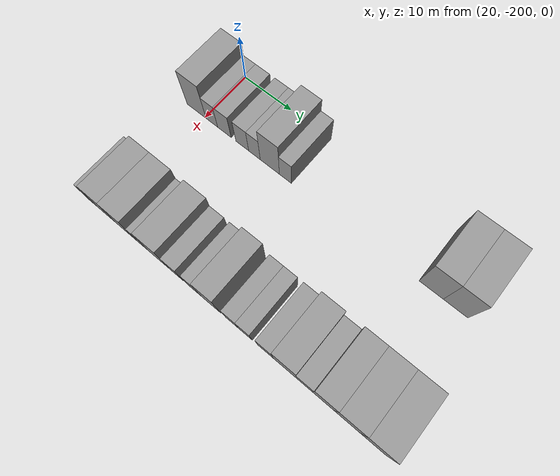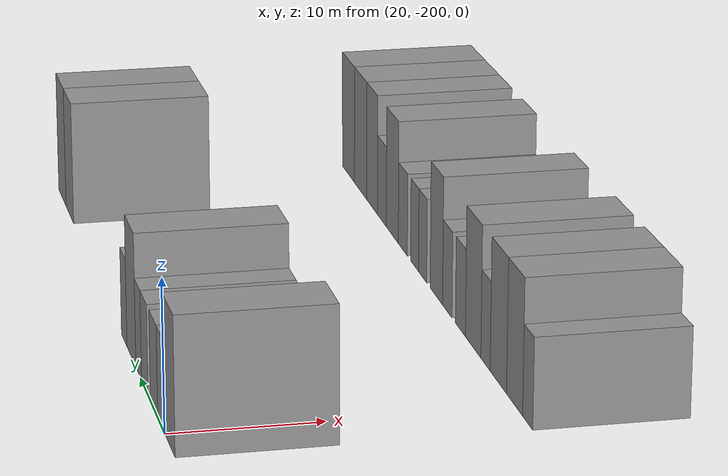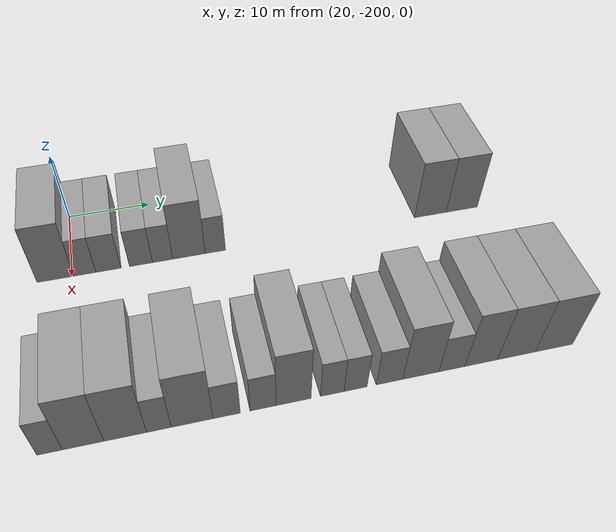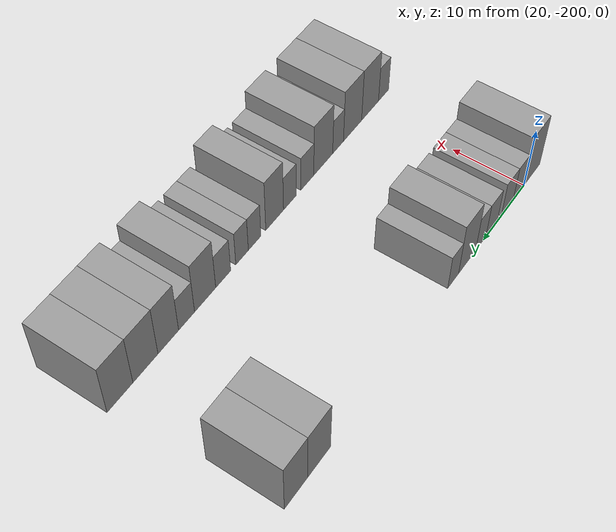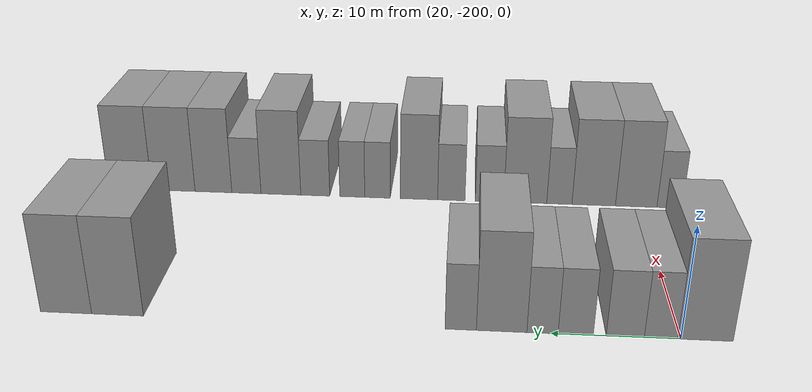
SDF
<sdf version="1.6">
 <world name="default">
  <model name="building_1">
   <static>1</static>
   <pose>25.0000 -201.8776 0 0.000000 0.000000 0.000000</pose>
   <link name="link">
    <pose>0 0 4.50 0 0 0</pose>
    <collision name="collision"><geometry><box><size>10.0000 4.2448 9.0000</size></box></geometry></collision>
    <visual name="visual">
     <cast_shadows>0</cast_shadows>
     <geometry><box><size>10.0000 4.2448 9.0000</size></box></geometry>
     <material>
      <script>
       <uri>model://grey_wall/materials/scripts</uri>
       <uri>model://grey_wall/materials/textures</uri>
       <name>vrc/grey_wall</name>
      </script>
     </material>
    </visual>
   </link>
  </model>
  <model name="building_2">
   <static>1</static>
   <pose>25.0000 -198.4805 0 0.000000 0.000000 0.000000</pose>
   <link name="link">
    <pose>0 0 3.00 0 0 0</pose>
    <collision name="collision"><geometry><box><size>10.0000 2.5494 6.0000</size></box></geometry></collision>
    <visual name="visual">
     <cast_shadows>0</cast_shadows>
     <geometry><box><size>10.0000 2.5494 6.0000</size></box></geometry>
     <material>
      <script>
       <uri>model://grey_wall/materials/scripts</uri>
       <uri>model://grey_wall/materials/textures</uri>
       <name>vrc/grey_wall</name>
      </script>
     </material>
    </visual>
   </link>
  </model>
  <model name="building_3">
   <static>1</static>
   <pose>25.0000 -195.7391 0 0.000000 0.000000 0.000000</pose>
   <link name="link">
    <pose>0 0 3.00 0 0 0</pose>
    <collision name="collision"><geometry><box><size>10.0000 2.9334 6.0000</size></box></geometry></collision>
    <visual name="visual">
     <cast_shadows>0</cast_shadows>
     <geometry><box><size>10.0000 2.9334 6.0000</size></box></geometry>
     <material>
      <script>
       <uri>model://grey_wall/materials/scripts</uri>
       <uri>model://grey_wall/materials/textures</uri>
       <name>vrc/grey_wall</name>
      </script>
     </material>
    </visual>
   </link>
  </model>
  <model name="building_4">
   <static>1</static>
   <pose>25.0000 -191.9077 0 0.000000 0.000000 0.000000</pose>
   <link name="link">
    <pose>0 0 3.00 0 0 0</pose>
    <collision name="collision"><geometry><box><size>10.0000 2.7295 6.0000</size></box></geometry></collision>
    <visual name="visual">
     <cast_shadows>0</cast_shadows>
     <geometry><box><size>10.0000 2.7295 6.0000</size></box></geometry>
     <material>
      <script>
       <uri>model://grey_wall/materials/scripts</uri>
       <uri>model://grey_wall/materials/textures</uri>
       <name>vrc/grey_wall</name>
      </script>
     </material>
    </visual>
   </link>
  </model>
  <model name="building_5">
   <static>1</static>
   <pose>25.0000 -189.3272 0 0.000000 0.000000 0.000000</pose>
   <link name="link">
    <pose>0 0 3.00 0 0 0</pose>
    <collision name="collision"><geometry><box><size>10.0000 2.4314 6.0000</size></box></geometry></collision>
    <visual name="visual">
     <cast_shadows>0</cast_shadows>
     <geometry><box><size>10.0000 2.4314 6.0000</size></box></geometry>
     <material>
      <script>
       <uri>model://grey_wall/materials/scripts</uri>
       <uri>model://grey_wall/materials/textures</uri>
       <name>vrc/grey_wall</name>
      </script>
     </material>
    </visual>
   </link>
  </model>
  <model name="building_6">
   <static>1</static>
   <pose>25.0000 -186.1348 0 0.000000 0.000000 0.000000</pose>
   <link name="link">
    <pose>0 0 4.50 0 0 0</pose>
    <collision name="collision"><geometry><box><size>10.0000 3.9535 9.0000</size></box></geometry></collision>
    <visual name="visual">
     <cast_shadows>0</cast_shadows>
     <geometry><box><size>10.0000 3.9535 9.0000</size></box></geometry>
     <material>
      <script>
       <uri>model://grey_wall/materials/scripts</uri>
       <uri>model://grey_wall/materials/textures</uri>
       <name>vrc/grey_wall</name>
      </script>
     </material>
    </visual>
   </link>
  </model>
  <model name="building_7">
   <static>1</static>
   <pose>25.0000 -182.9249 0 0.000000 0.000000 0.000000</pose>
   <link name="link">
    <pose>0 0 3.00 0 0 0</pose>
    <collision name="collision"><geometry><box><size>10.0000 2.4664 6.0000</size></box></geometry></collision>
    <visual name="visual">
     <cast_shadows>0</cast_shadows>
     <geometry><box><size>10.0000 2.4664 6.0000</size></box></geometry>
     <material>
      <script>
       <uri>model://grey_wall/materials/scripts</uri>
       <uri>model://grey_wall/materials/textures</uri>
       <name>vrc/grey_wall</name>
      </script>
     </material>
    </visual>
   </link>
  </model>
  <model name="building_8">
   <static>1</static>
   <pose>25.0000 -155.2964 0 0.000000 0.000000 0.000000</pose>
   <link name="link">
    <pose>0 0 4.50 0 0 0</pose>
    <collision name="collision"><geometry><box><size>10.0000 4.2636 9.0000</size></box></geometry></collision>
    <visual name="visual">
     <cast_shadows>0</cast_shadows>
     <geometry><box><size>10.0000 4.2636 9.0000</size></box></geometry>
     <material>
      <script>
       <uri>model://grey_wall/materials/scripts</uri>
       <uri>model://grey_wall/materials/textures</uri>
       <name>vrc/grey_wall</name>
      </script>
     </material>
    </visual>
   </link>
  </model>
  <model name="building_9">
   <static>1</static>
   <pose>25.0000 -151.0444 0 0.000000 0.000000 0.000000</pose>
   <link name="link">
    <pose>0 0 4.50 0 0 0</pose>
    <collision name="collision"><geometry><box><size>10.0000 4.2404 9.0000</size></box></geometry></collision>
    <visual name="visual">
     <cast_shadows>0</cast_shadows>
     <geometry><box><size>10.0000 4.2404 9.0000</size></box></geometry>
     <material>
      <script>
       <uri>model://grey_wall/materials/scripts</uri>
       <uri>model://grey_wall/materials/textures</uri>
       <name>vrc/grey_wall</name>
      </script>
     </material>
    </visual>
   </link>
  </model>
  <model name="building_102">
   <static>1</static>
   <pose>47.0000 -202.7905 0 0.000000 0.000000 0.000000</pose>
   <link name="link">
    <pose>0 0 3.00 0 0 0</pose>
    <collision name="collision"><geometry><box><size>10.0000 2.4190 6.0000</size></box></geometry></collision>
    <visual name="visual">
     <cast_shadows>0</cast_shadows>
     <geometry><box><size>10.0000 2.4190 6.0000</size></box></geometry>
     <material>
      <script>
       <uri>model://grey_wall/materials/scripts</uri>
       <uri>model://grey_wall/materials/textures</uri>
       <name>vrc/grey_wall</name>
      </script>
     </material>
    </visual>
   </link>
  </model>
  <model name="building_103">
   <static>1</static>
   <pose>47.0000 -199.5905 0 0.000000 0.000000 0.000000</pose>
   <link name="link">
    <pose>0 0 4.50 0 0 0</pose>
    <collision name="collision"><geometry><box><size>10.0000 3.9810 9.0000</size></box></geometry></collision>
    <visual name="visual">
     <cast_shadows>0</cast_shadows>
     <geometry><box><size>10.0000 3.9810 9.0000</size></box></geometry>
     <material>
      <script>
       <uri>model://grey_wall/materials/scripts</uri>
       <uri>model://grey_wall/materials/textures</uri>
       <name>vrc/grey_wall</name>
      </script>
     </material>
    </visual>
   </link>
  </model>
  <model name="building_104">
   <static>1</static>
   <pose>47.0000 -195.5062 0 0.000000 0.000000 0.000000</pose>
   <link name="link">
    <pose>0 0 4.50 0 0 0</pose>
    <collision name="collision"><geometry><box><size>10.0000 4.1878 9.0000</size></box></geometry></collision>
    <visual name="visual">
     <cast_shadows>0</cast_shadows>
     <geometry><box><size>10.0000 4.1878 9.0000</size></box></geometry>
     <material>
      <script>
       <uri>model://grey_wall/materials/scripts</uri>
       <uri>model://grey_wall/materials/textures</uri>
       <name>vrc/grey_wall</name>
      </script>
     </material>
    </visual>
   </link>
  </model>
  <model name="building_105">
   <static>1</static>
   <pose>47.0000 -192.1916 0 0.000000 0.000000 0.000000</pose>
   <link name="link">
    <pose>0 0 3.00 0 0 0</pose>
    <collision name="collision"><geometry><box><size>10.0000 2.4413 6.0000</size></box></geometry></collision>
    <visual name="visual">
     <cast_shadows>0</cast_shadows>
     <geometry><box><size>10.0000 2.4413 6.0000</size></box></geometry>
     <material>
      <script>
       <uri>model://grey_wall/materials/scripts</uri>
       <uri>model://grey_wall/materials/textures</uri>
       <name>vrc/grey_wall</name>
      </script>
     </material>
    </visual>
   </link>
  </model>
  <model name="building_106">
   <static>1</static>
   <pose>47.0000 -188.8777 0 0.000000 0.000000 0.000000</pose>
   <link name="link">
    <pose>0 0 4.50 0 0 0</pose>
    <collision name="collision"><geometry><box><size>10.0000 4.1865 9.0000</size></box></geometry></collision>
    <visual name="visual">
     <cast_shadows>0</cast_shadows>
     <geometry><box><size>10.0000 4.1865 9.0000</size></box></geometry>
     <material>
      <script>
       <uri>model://grey_wall/materials/scripts</uri>
       <uri>model://grey_wall/materials/textures</uri>
       <name>vrc/grey_wall</name>
      </script>
     </material>
    </visual>
   </link>
  </model>
  <model name="building_107">
   <static>1</static>
   <pose>47.0000 -185.3934 0 0.000000 0.000000 0.000000</pose>
   <link name="link">
    <pose>0 0 3.00 0 0 0</pose>
    <collision name="collision"><geometry><box><size>10.0000 2.7820 6.0000</size></box></geometry></collision>
    <visual name="visual">
     <cast_shadows>0</cast_shadows>
     <geometry><box><size>10.0000 2.7820 6.0000</size></box></geometry>
     <material>
      <script>
       <uri>model://grey_wall/materials/scripts</uri>
       <uri>model://grey_wall/materials/textures</uri>
       <name>vrc/grey_wall</name>
      </script>
     </material>
    </visual>
   </link>
  </model>
  <model name="building_108">
   <static>1</static>
   <pose>47.0000 -181.6596 0 0.000000 0.000000 0.000000</pose>
   <link name="link">
    <pose>0 0 3.00 0 0 0</pose>
    <collision name="collision"><geometry><box><size>10.0000 2.6855 6.0000</size></box></geometry></collision>
    <visual name="visual">
     <cast_shadows>0</cast_shadows>
     <geometry><box><size>10.0000 2.6855 6.0000</size></box></geometry>
     <material>
      <script>
       <uri>model://grey_wall/materials/scripts</uri>
       <uri>model://grey_wall/materials/textures</uri>
       <name>vrc/grey_wall</name>
      </script>
     </material>
    </visual>
   </link>
  </model>
  <model name="building_109">
   <static>1</static>
   <pose>47.0000 -178.4785 0 0.000000 0.000000 0.000000</pose>
   <link name="link">
    <pose>0 0 4.50 0 0 0</pose>
    <collision name="collision"><geometry><box><size>10.0000 3.6767 9.0000</size></box></geometry></collision>
    <visual name="visual">
     <cast_shadows>0</cast_shadows>
     <geometry><box><size>10.0000 3.6767 9.0000</size></box></geometry>
     <material>
      <script>
       <uri>model://grey_wall/materials/scripts</uri>
       <uri>model://grey_wall/materials/textures</uri>
       <name>vrc/grey_wall</name>
      </script>
     </material>
    </visual>
   </link>
  </model>
  <model name="building_110">
   <static>1</static>
   <pose>47.0000 -174.3779 0 0.000000 0.000000 0.000000</pose>
   <link name="link">
    <pose>0 0 3.00 0 0 0</pose>
    <collision name="collision"><geometry><box><size>10.0000 2.5247 6.0000</size></box></geometry></collision>
    <visual name="visual">
     <cast_shadows>0</cast_shadows>
     <geometry><box><size>10.0000 2.5247 6.0000</size></box></geometry>
     <material>
      <script>
       <uri>model://grey_wall/materials/scripts</uri>
       <uri>model://grey_wall/materials/textures</uri>
       <name>vrc/grey_wall</name>
      </script>
     </material>
    </visual>
   </link>
  </model>
  <model name="building_111">
   <static>1</static>
   <pose>47.0000 -171.8724 0 0.000000 0.000000 0.000000</pose>
   <link name="link">
    <pose>0 0 3.00 0 0 0</pose>
    <collision name="collision"><geometry><box><size>10.0000 2.4861 6.0000</size></box></geometry></collision>
    <visual name="visual">
     <cast_shadows>0</cast_shadows>
     <geometry><box><size>10.0000 2.4861 6.0000</size></box></geometry>
     <material>
      <script>
       <uri>model://grey_wall/materials/scripts</uri>
       <uri>model://grey_wall/materials/textures</uri>
       <name>vrc/grey_wall</name>
      </script>
     </material>
    </visual>
   </link>
  </model>
  <model name="building_112">
   <static>1</static>
   <pose>47.0000 -168.1821 0 0.000000 0.000000 0.000000</pose>
   <link name="link">
    <pose>0 0 3.00 0 0 0</pose>
    <collision name="collision"><geometry><box><size>10.0000 2.8946 6.0000</size></box></geometry></collision>
    <visual name="visual">
     <cast_shadows>0</cast_shadows>
     <geometry><box><size>10.0000 2.8946 6.0000</size></box></geometry>
     <material>
      <script>
       <uri>model://grey_wall/materials/scripts</uri>
       <uri>model://grey_wall/materials/textures</uri>
       <name>vrc/grey_wall</name>
      </script>
     </material>
    </visual>
   </link>
  </model>
  <model name="building_113">
   <static>1</static>
   <pose>47.0000 -164.7378 0 0.000000 0.000000 0.000000</pose>
   <link name="link">
    <pose>0 0 4.50 0 0 0</pose>
    <collision name="collision"><geometry><box><size>10.0000 3.9939 9.0000</size></box></geometry></collision>
    <visual name="visual">
     <cast_shadows>0</cast_shadows>
     <geometry><box><size>10.0000 3.9939 9.0000</size></box></geometry>
     <material>
      <script>
       <uri>model://grey_wall/materials/scripts</uri>
       <uri>model://grey_wall/materials/textures</uri>
       <name>vrc/grey_wall</name>
      </script>
     </material>
    </visual>
   </link>
  </model>
  <model name="building_114">
   <static>1</static>
   <pose>47.0000 -161.2684 0 0.000000 0.000000 0.000000</pose>
   <link name="link">
    <pose>0 0 3.00 0 0 0</pose>
    <collision name="collision"><geometry><box><size>10.0000 2.9449 6.0000</size></box></geometry></collision>
    <visual name="visual">
     <cast_shadows>0</cast_shadows>
     <geometry><box><size>10.0000 2.9449 6.0000</size></box></geometry>
     <material>
      <script>
       <uri>model://grey_wall/materials/scripts</uri>
       <uri>model://grey_wall/materials/textures</uri>
       <name>vrc/grey_wall</name>
      </script>
     </material>
    </visual>
   </link>
  </model>
  <model name="building_115">
   <static>1</static>
   <pose>47.0000 -157.9337 0 0.000000 0.000000 0.000000</pose>
   <link name="link">
    <pose>0 0 4.50 0 0 0</pose>
    <collision name="collision"><geometry><box><size>10.0000 3.7247 9.0000</size></box></geometry></collision>
    <visual name="visual">
     <cast_shadows>0</cast_shadows>
     <geometry><box><size>10.0000 3.7247 9.0000</size></box></geometry>
     <material>
      <script>
       <uri>model://grey_wall/materials/scripts</uri>
       <uri>model://grey_wall/materials/textures</uri>
       <name>vrc/grey_wall</name>
      </script>
     </material>
    </visual>
   </link>
  </model>
  <model name="building_116">
   <static>1</static>
   <pose>47.0000 -153.8785 0 0.000000 0.000000 0.000000</pose>
   <link name="link">
    <pose>0 0 4.50 0 0 0</pose>
    <collision name="collision"><geometry><box><size>10.0000 4.3856 9.0000</size></box></geometry></collision>
    <visual name="visual">
     <cast_shadows>0</cast_shadows>
     <geometry><box><size>10.0000 4.3856 9.0000</size></box></geometry>
     <material>
      <script>
       <uri>model://grey_wall/materials/scripts</uri>
       <uri>model://grey_wall/materials/textures</uri>
       <name>vrc/grey_wall</name>
      </script>
     </material>
    </visual>
   </link>
  </model>
  <model name="building_117">
   <static>1</static>
   <pose>47.0000 -149.4785 0 0.000000 0.000000 0.000000</pose>
   <link name="link">
    <pose>0 0 4.50 0 0 0</pose>
    <collision name="collision"><geometry><box><size>10.0000 4.4143 9.0000</size></box></geometry></collision>
    <visual name="visual">
     <cast_shadows>0</cast_shadows>
     <geometry><box><size>10.0000 4.4143 9.0000</size></box></geometry>
     <material>
      <script>
       <uri>model://grey_wall/materials/scripts</uri>
       <uri>model://grey_wall/materials/textures</uri>
       <name>vrc/grey_wall</name>
      </script>
     </material>
    </visual>
   </link>
  </model>
 </world>
</sdf>
